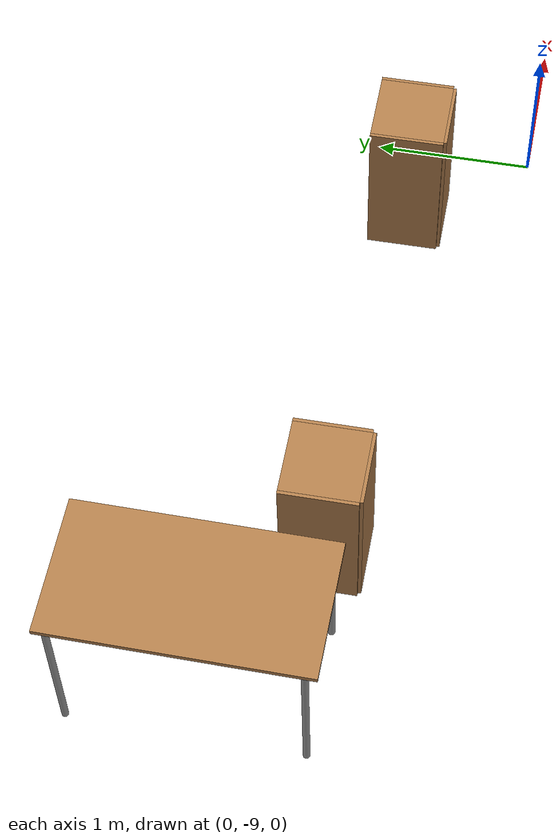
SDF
<sdf version="1.6">
 <world name="default">
  <model name="cabinet">
   <static>1</static>
   <link name="cabinet_bottom_plate">
    <inertial>
     <pose>0 0 -1 0 -0 0</pose>
     <inertia><ixx>2.05</ixx><ixy>0</ixy><ixz>0</ixz><iyy>2.05</iyy><iyz>0</iyz><izz>2.05</izz></inertia>
     <mass>25</mass>
    </inertial>
    <collision name="cabinet_bottom_plate_geom">
     <pose>0 0 0.01 0 -0 0</pose>
     <geometry><box><size>0.45 0.45 0.02</size></box></geometry>
    </collision>
    <visual name="cabinet_bottom_plate_geom_visual">
     <pose>0 0 0.01 0 -0 0</pose>
     <geometry><box><size>0.45 0.45 0.02</size></box></geometry>
     <material>
      <script><uri>file://media/materials/scripts/gazebo.material</uri><name>Gazebo/Wood</name></script>
     </material>
    </visual>
    <collision name="cabinet_bottom_plate_geom_cabinet_back_plate">
     <pose>0.235 0 0.51 0 -0 0</pose>
     <geometry><box><size>0.02 0.45 1.02</size></box></geometry>
    </collision>
    <visual name="cabinet_bottom_plate_geom_cabinet_back_plate_visual">
     <pose>0.235 0 0.51 0 -0 0</pose>
     <geometry><box><size>0.02 0.45 1.02</size></box></geometry>
     <material>
      <script><uri>file://media/materials/scripts/gazebo.material</uri><name>Gazebo/Wood</name></script>
     </material>
    </visual>
    <collision name="cabinet_bottom_plate_geom_cabinet_left_plate">
     <pose>0 0.235 0.51 0 -0 0</pose>
     <geometry><box><size>0.45 0.02 1.02</size></box></geometry>
    </collision>
    <visual name="cabinet_bottom_plate_geom_cabinet_left_plate_visual">
     <pose>0 0.235 0.51 0 -0 0</pose>
     <geometry><box><size>0.45 0.02 1.02</size></box></geometry>
     <material>
      <script><uri>file://media/materials/scripts/gazebo.material</uri><name>Gazebo/Wood</name></script>
     </material>
    </visual>
    <collision name="cabinet_bottom_plate_geom_cabinet_middle_plate">
     <pose>0 0 0.51 0 -0 0</pose>
     <geometry><box><size>0.45 0.45 0.02</size></box></geometry>
    </collision>
    <visual name="cabinet_bottom_plate_geom_cabinet_middle_plate_visual">
     <pose>0 0 0.51 0 -0 0</pose>
     <geometry><box><size>0.45 0.45 0.02</size></box></geometry>
     <material>
      <script><uri>file://media/materials/scripts/gazebo.material</uri><name>Gazebo/Wood</name></script>
     </material>
    </visual>
    <collision name="cabinet_bottom_plate_geom_cabinet_right_plate">
     <pose>0 -0.235 0.51 0 -0 0</pose>
     <geometry><box><size>0.45 0.02 1.02</size></box></geometry>
    </collision>
    <visual name="cabinet_bottom_plate_geom_cabinet_right_plate_visual">
     <pose>0 -0.235 0.51 0 -0 0</pose>
     <geometry><box><size>0.45 0.02 1.02</size></box></geometry>
     <material>
      <script><uri>file://media/materials/scripts/gazebo.material</uri><name>Gazebo/Wood</name></script>
     </material>
    </visual>
    <collision name="cabinet_bottom_plate_geom_cabinet_top_plate">
     <pose>0 0 1.01 0 -0 0</pose>
     <geometry><box><size>0.45 0.45 0.02</size></box></geometry>
    </collision>
    <visual name="cabinet_bottom_plate_geom_cabinet_top_plate_visual">
     <pose>0 0 1.01 0 -0 0</pose>
     <geometry><box><size>0.45 0.45 0.02</size></box></geometry>
     <material>
      <script><uri>file://media/materials/scripts/gazebo.material</uri><name>Gazebo/Wood</name></script>
     </material>
    </visual>
   </link>
   <pose>-0.549048 -8.27147 0 0 0 -1.56389</pose>
  </model>
  <model name="cabinet_clone">
   <static>1</static>
   <link name="cabinet_bottom_plate">
    <inertial>
     <pose>0 0 -1 0 -0 0</pose>
     <inertia><ixx>2.05</ixx><ixy>0</ixy><ixz>0</ixz><iyy>2.05</iyy><iyz>0</iyz><izz>2.05</izz></inertia>
     <mass>25</mass>
    </inertial>
    <collision name="cabinet_bottom_plate_geom">
     <pose>0 0 0.01 0 -0 0</pose>
     <geometry><box><size>0.45 0.45 0.02</size></box></geometry>
    </collision>
    <visual name="cabinet_bottom_plate_geom_visual">
     <pose>0 0 0.01 0 -0 0</pose>
     <geometry><box><size>0.45 0.45 0.02</size></box></geometry>
     <material>
      <script><uri>file://media/materials/scripts/gazebo.material</uri><name>Gazebo/Wood</name></script>
     </material>
    </visual>
    <collision name="cabinet_bottom_plate_geom_cabinet_back_plate">
     <pose>0.235 0 0.51 0 -0 0</pose>
     <geometry><box><size>0.02 0.45 1.02</size></box></geometry>
    </collision>
    <visual name="cabinet_bottom_plate_geom_cabinet_back_plate_visual">
     <pose>0.235 0 0.51 0 -0 0</pose>
     <geometry><box><size>0.02 0.45 1.02</size></box></geometry>
     <material>
      <script><uri>file://media/materials/scripts/gazebo.material</uri><name>Gazebo/Wood</name></script>
     </material>
    </visual>
    <collision name="cabinet_bottom_plate_geom_cabinet_left_plate">
     <pose>0 0.235 0.51 0 -0 0</pose>
     <geometry><box><size>0.45 0.02 1.02</size></box></geometry>
    </collision>
    <visual name="cabinet_bottom_plate_geom_cabinet_left_plate_visual">
     <pose>0 0.235 0.51 0 -0 0</pose>
     <geometry><box><size>0.45 0.02 1.02</size></box></geometry>
     <material>
      <script><uri>file://media/materials/scripts/gazebo.material</uri><name>Gazebo/Wood</name></script>
     </material>
    </visual>
    <collision name="cabinet_bottom_plate_geom_cabinet_middle_plate">
     <pose>0 0 0.51 0 -0 0</pose>
     <geometry><box><size>0.45 0.45 0.02</size></box></geometry>
    </collision>
    <visual name="cabinet_bottom_plate_geom_cabinet_middle_plate_visual">
     <pose>0 0 0.51 0 -0 0</pose>
     <geometry><box><size>0.45 0.45 0.02</size></box></geometry>
     <material>
      <script><uri>file://media/materials/scripts/gazebo.material</uri><name>Gazebo/Wood</name></script>
     </material>
    </visual>
    <collision name="cabinet_bottom_plate_geom_cabinet_right_plate">
     <pose>0 -0.235 0.51 0 -0 0</pose>
     <geometry><box><size>0.45 0.02 1.02</size></box></geometry>
    </collision>
    <visual name="cabinet_bottom_plate_geom_cabinet_right_plate_visual">
     <pose>0 -0.235 0.51 0 -0 0</pose>
     <geometry><box><size>0.45 0.02 1.02</size></box></geometry>
     <material>
      <script><uri>file://media/materials/scripts/gazebo.material</uri><name>Gazebo/Wood</name></script>
     </material>
    </visual>
    <collision name="cabinet_bottom_plate_geom_cabinet_top_plate">
     <pose>0 0 1.01 0 -0 0</pose>
     <geometry><box><size>0.45 0.45 0.02</size></box></geometry>
    </collision>
    <visual name="cabinet_bottom_plate_geom_cabinet_top_plate_visual">
     <pose>0 0 1.01 0 -0 0</pose>
     <geometry><box><size>0.45 0.45 0.02</size></box></geometry>
     <material>
      <script><uri>file://media/materials/scripts/gazebo.material</uri><name>Gazebo/Wood</name></script>
     </material>
    </visual>
   </link>
   <pose>-3.13192 -8.2031 0 0 0 -1.56389</pose>
  </model>
  <model name="table">
   <static>1</static>
   <link name="link">
    <collision name="surface">
     <pose>0 0 1 0 -0 0</pose>
     <geometry><box><size>1.5 0.8 0.03</size></box></geometry>
     <surface><friction><ode><mu>0.6</mu><mu2>0.6</mu2></ode></friction></surface>
    </collision>
    <visual name="visual1">
     <pose>0 0 1 0 -0 0</pose>
     <geometry><box><size>1.5 0.8 0.03</size></box></geometry>
     <material>
      <script><uri>file://media/materials/scripts/gazebo.material</uri><name>Gazebo/Wood</name></script>
     </material>
    </visual>
    <collision name="front_left_leg">
     <pose>0.68 0.38 0.5 0 -0 0</pose>
     <geometry><cylinder><radius>0.02</radius><length>1</length></cylinder></geometry>
    </collision>
    <visual name="front_left_leg">
     <pose>0.68 0.38 0.5 0 -0 0</pose>
     <geometry><cylinder><radius>0.02</radius><length>1</length></cylinder></geometry>
     <material>
      <script><uri>file://media/materials/scripts/gazebo.material</uri><name>Gazebo/Grey</name></script>
     </material>
    </visual>
    <collision name="front_right_leg">
     <pose>0.68 -0.38 0.5 0 -0 0</pose>
     <geometry><cylinder><radius>0.02</radius><length>1</length></cylinder></geometry>
    </collision>
    <visual name="front_right_leg">
     <pose>0.68 -0.38 0.5 0 -0 0</pose>
     <geometry><cylinder><radius>0.02</radius><length>1</length></cylinder></geometry>
     <material>
      <script><uri>file://media/materials/scripts/gazebo.material</uri><name>Gazebo/Grey</name></script>
     </material>
    </visual>
    <collision name="back_right_leg">
     <pose>-0.68 -0.38 0.5 0 -0 0</pose>
     <geometry><cylinder><radius>0.02</radius><length>1</length></cylinder></geometry>
    </collision>
    <visual name="back_right_leg">
     <pose>-0.68 -0.38 0.5 0 -0 0</pose>
     <geometry><cylinder><radius>0.02</radius><length>1</length></cylinder></geometry>
     <material>
      <script><uri>file://media/materials/scripts/gazebo.material</uri><name>Gazebo/Grey</name></script>
     </material>
    </visual>
    <collision name="back_left_leg">
     <pose>-0.68 0.38 0.5 0 -0 0</pose>
     <geometry><cylinder><radius>0.02</radius><length>1</length></cylinder></geometry>
    </collision>
    <visual name="back_left_leg">
     <pose>-0.68 0.38 0.5 0 -0 0</pose>
     <geometry><cylinder><radius>0.02</radius><length>1</length></cylinder></geometry>
     <material>
      <script><uri>file://media/materials/scripts/gazebo.material</uri><name>Gazebo/Grey</name></script>
     </material>
    </visual>
   </link>
   <pose>-4.00636 -7.64692 0 0 0 -1.57233</pose>
  </model>
 </world>
</sdf>
